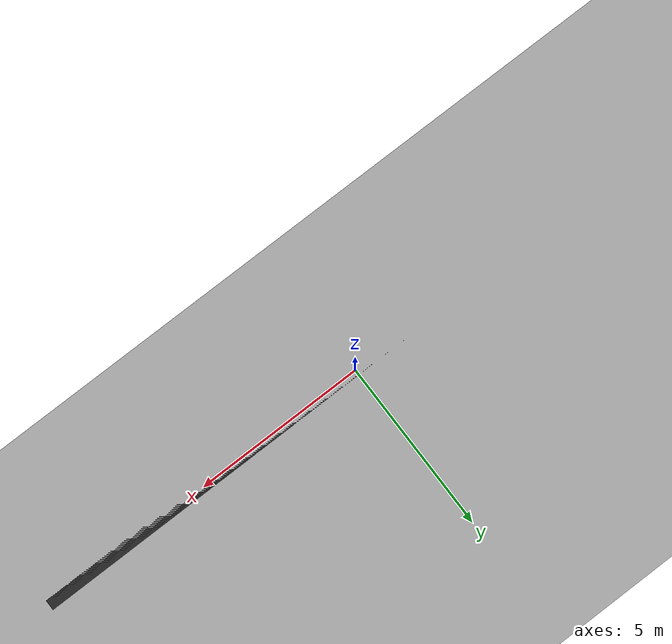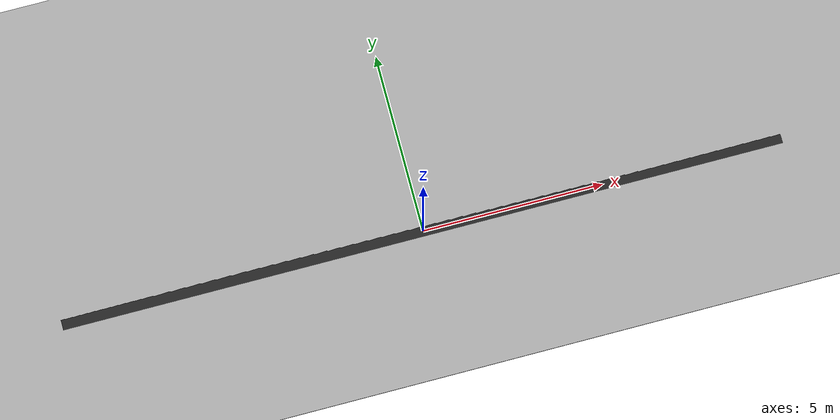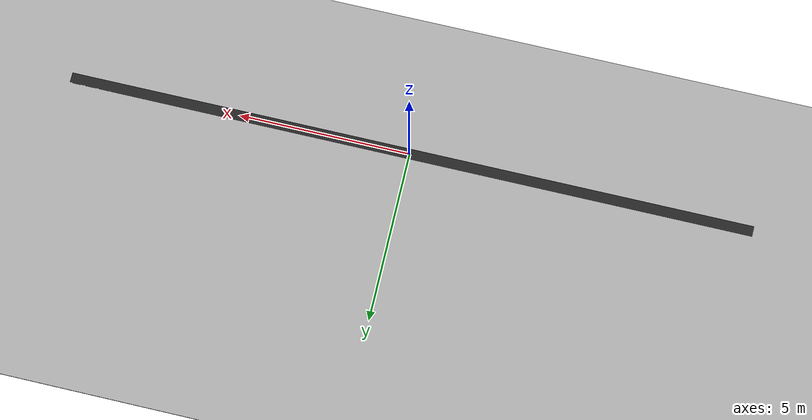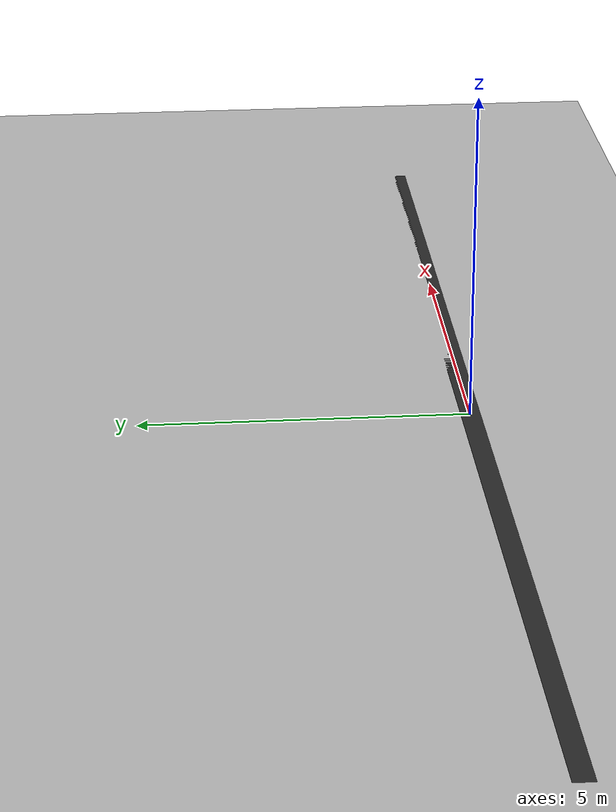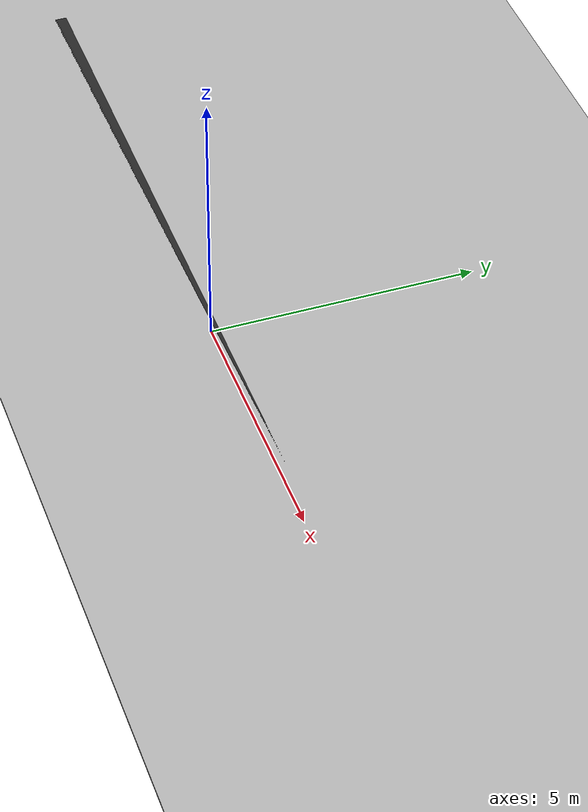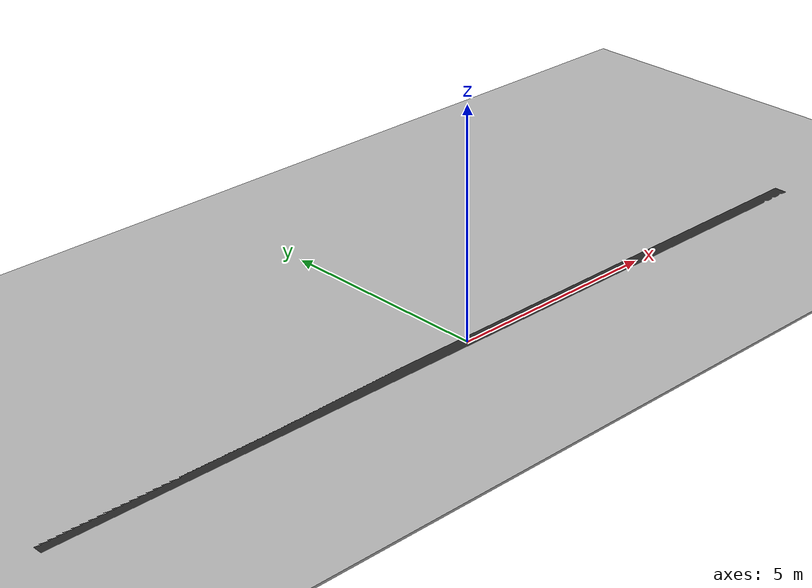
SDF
<?xml version="1.0" ?>
<sdf version="1.9">
  <world name="train_world_test">
    <plugin name="gz::sim::systems::SceneBroadcaster" filename="gz-sim-scene-broadcaster-system"/>
    <plugin name="gz::sim::systems::UserCommands" filename="gz-sim-user-commands-system"/>
    <gravity>0 0 -9.81</gravity>

    <!-- Ground -->
   <!-- Local ground plane as a big thin box -->
  <model name="ground" static="true">
    <pose>0 0 0 0 0 0</pose>
    <link name="ground_link">
      <collision name="col">
        <geometry><box><size>200 200 0.05</size></box></geometry>
      </collision>
      <visual name="vis">
        <geometry><box><size>200 200 0.05</size></box></geometry>
        <material><diffuse>0.7 0.7 0.7 1</diffuse></material>
      </visual>
    </link>
  </model>

    <!-- Simple straight "track": a long, thin box (visual + collision) -->
    <model name="straight_track" static="true">
      <pose>0 0 0 0 0 0</pose>
      <link name="track">
        <visual name="vis">
          <geometry><box><size>20 0.3 0.05</size></box></geometry>
          <material><diffuse>0.15 0.15 0.15 1</diffuse></material>
        </visual>
        <collision name="col">
          <geometry><box><size>20 0.3 0.05</size></box></geometry>
        </collision>
      </link>
    </model>
  </world>
</sdf>
